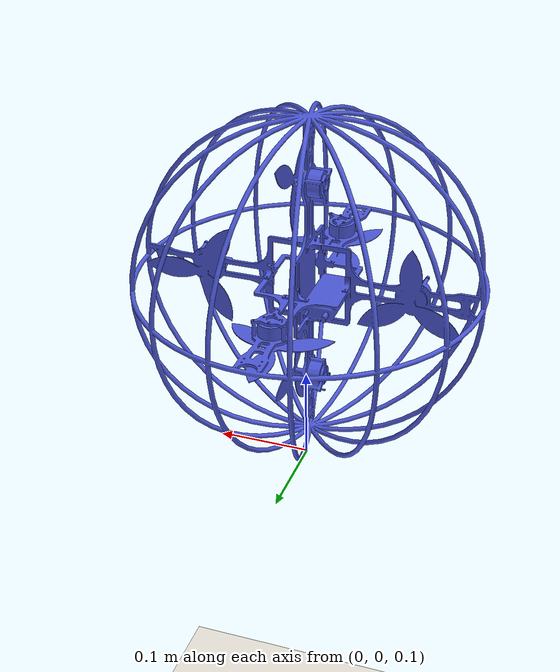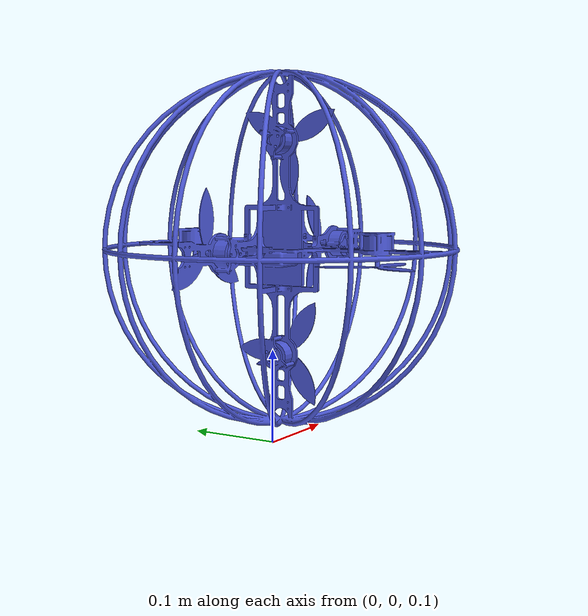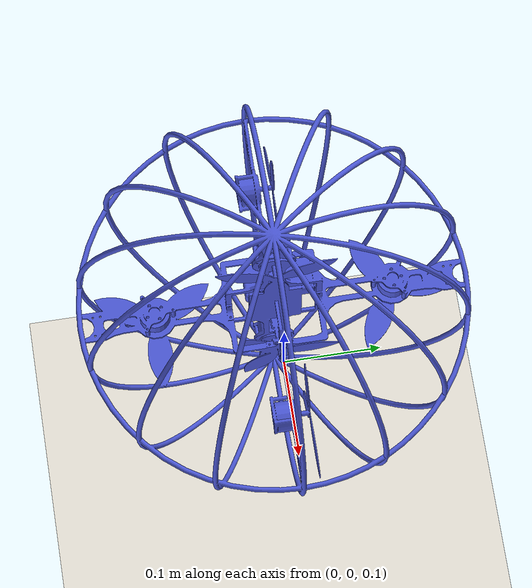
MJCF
<?xml version='1.0' encoding='utf-8'?>
<mujoco model="robot_v0">
  <compiler angle="radian" meshdir="../../robot_v0/meshes" />
  <asset>
    <mesh name="base_link" file="base_link.STL" />
  </asset>
  <worldbody>
    <geom name="ground" type="plane" size="10 10 0.1" rgba="0.92 0.9 0.86 1.0" pos="0 0 -0.5" friction="1.0 0.02 0.001" condim="6" solref="0.02 1" solimp="0.9 0.95 0.01" contype="1" conaffinity="1" />
    <body name="base_link" pos="0 0 0.3">
      <freejoint name="base_freejoint" />
      <inertial pos="-0.00947723458007864 0.0105882872053558 0.000698429393609694" mass="1.51773502445456" diaginertia="0.0259567475848409 0.0323962555887501 0.0323879403867107" />
      <geom type="mesh" mesh="base_link" rgba="0.3 0.35 0.85 0.95" friction="1.0 0.02 0.001" condim="6" solref="0.02 1" solimp="0.9 0.95 0.01" contype="1" conaffinity="1" />
    </body>
  </worldbody>
  <option timestep="0.001" gravity="0 0 -9.81" iterations="100" tolerance="1e-6" solver="Newton" integrator="implicitfast" cone="elliptic" />
</mujoco>
